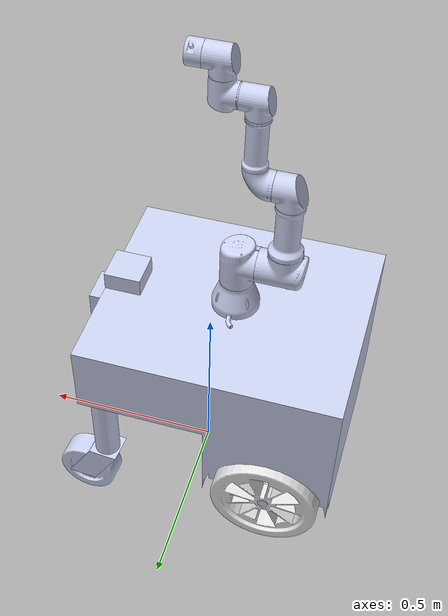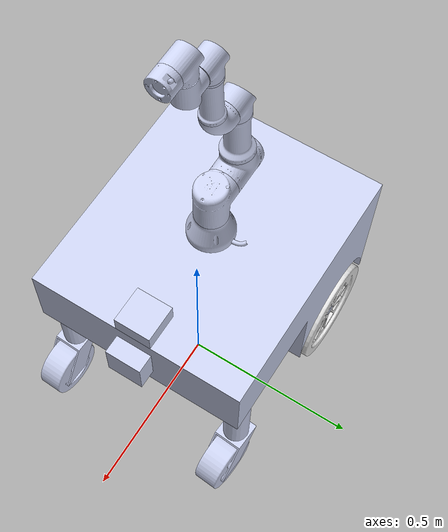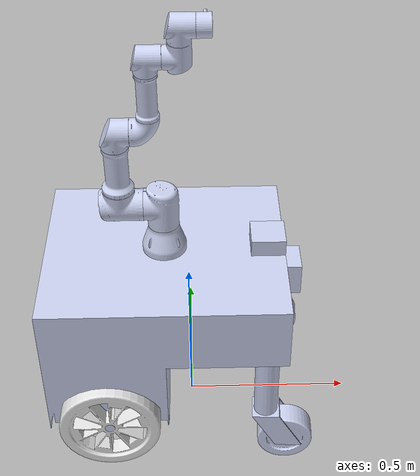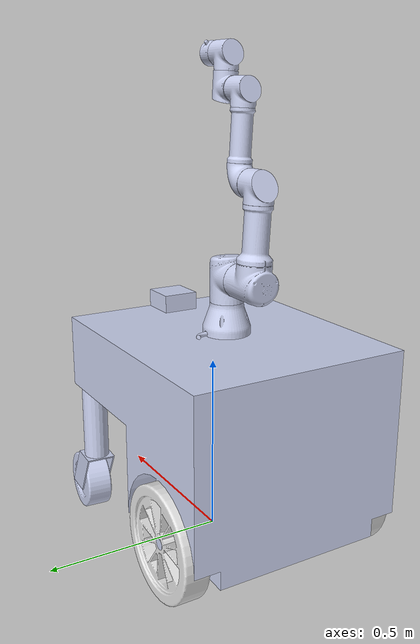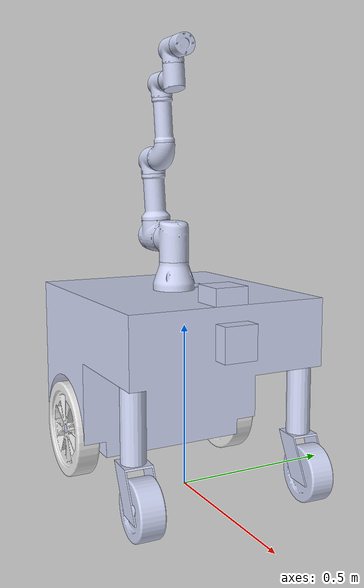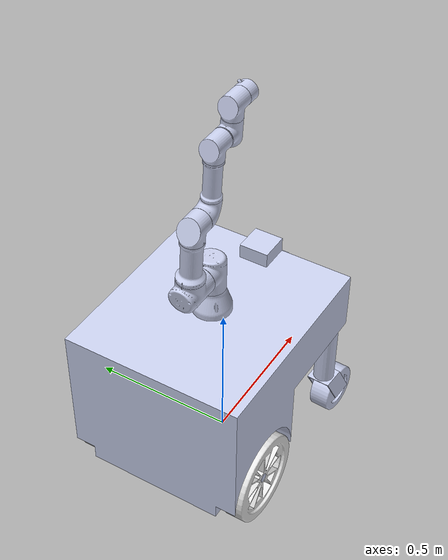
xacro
<?xml version="1.0"?>
<robot
     xmlns:xacro="http://www.ros.org/wiki/xacro" name="mgbot3">
    <xacro:include filename="$(find mgbot3)/urdf/mgbot3_base.xacro" />

    <xacro:include filename="$(find mgbot3)/urdf/sensor.xacro" />

    <xacro:include filename="$(find mgbot3)/urdf/color.xacro" />

    <xacro:include filename="$(find mgbot3)/urdf/transmission.xacro" />

</robot>

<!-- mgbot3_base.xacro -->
<robot
     xmlns:xacro="http://www.ros.org/wiki/xacro" name="mgbot3_base">

  <link name="base_footprint">
            <visual>
                <origin xyz="0 0 0" rpy="0 0 0" />
                <geometry>
                    <box size="0.001 0.001 0.001" />
                </geometry>
            </visual>
   </link>

   <joint name="base_footprint_joint" type="fixed">
            <origin xyz="-0.068339 8.6736E-18 0.6" rpy="0 0 0" />
            <parent link="base_footprint"/>
            <child link="base_link" />
      </joint>
  <link
    name="base_link">
    <inertial>
      <origin
        xyz="-0.068339 8.6736E-18 -0.19433"
        rpy="0 0 0" />
      <mass
        value="137.94" />
      <inertia
        ixx="6.3738"
        ixy="-2.2346E-16"
        ixz="-1.3864"
        iyy="7.6094"
        iyz="1.3046E-16"
        izz="8.7761" />
    </inertial>
    <visual>
      <origin
        xyz="0 0 0"
        rpy="0 0 0" />
      <geometry>
        <mesh
          filename="package://mgbot3/meshes/base_link.STL" />
      </geometry>
      <material
        name="">
        <color
          rgba="0.79216 0.81961 0.93333 1" />
      </material>
    </visual>
    <collision>
      <origin
        xyz="0 0 0"
        rpy="0 0 0" />
      <geometry>
        <mesh
          filename="package://mgbot3/meshes/base_link.STL" />
      </geometry>
    </collision>
  </link>
  <link
    name="left_wheel_link">
    <inertial>
      <origin
        xyz="-4.8493E-06 -0.025 -9.4022E-07"
        rpy="0 0 0" />
      <mass
        value="2.7059" />
      <inertia
        ixx="0.021276"
        ixy="1.6819E-08"
        ixz="1.4738E-07"
        iyy="0.040747"
        iyz="1.2499E-08"
        izz="0.021275" />
    </inertial>
    <visual>
      <origin
        xyz="0 0 0"
        rpy="0 0 0" />
      <geometry>
        <mesh
          filename="package://mgbot3/meshes/left_wheel_link.STL" />
      </geometry>
      <material
        name="">
        <color
          rgba="0.89804 0.89804 0.89804 1" />
      </material>
    </visual>
    <collision>
      <origin
        xyz="0 0 0"
        rpy="0 0 0" />
      <geometry>
        <mesh
          filename="package://mgbot3/meshes/left_wheel_link.STL" />
      </geometry>
    </collision>
  </link>
  <joint
    name="left_wheel_joint"
    type="continuous">
    <origin
      xyz="-0.17499 0.3 -0.45"
      rpy="0 0 0" />
    <parent
      link="base_link" />
    <child
      link="left_wheel_link" />
    <axis
      xyz="1.2505E-05 1 0" />
    <limit
      effort="100"
      velocity="15" />
    <dynamics
      damping="0"
      friction="0" />
  </joint>
  <link
    name="right_wheel_link">
    <inertial>
      <origin
        xyz="2.1448E-06 0.025 -4.4497E-06"
        rpy="0 0 0" />
      <mass
        value="2.7059" />
      <inertia
        ixx="0.021275"
        ixy="3.2647E-11"
        ixz="-8.9311E-10"
        iyy="0.040747"
        iyz="-2.0955E-08"
        izz="0.021276" />
    </inertial>
    <visual>
      <origin
        xyz="0 0 0"
        rpy="0 0 0" />
      <geometry>
        <mesh
          filename="package://mgbot3/meshes/right_wheel_link.STL" />
      </geometry>
      <material
        name="">
        <color
          rgba="0.89804 0.89804 0.89804 1" />
      </material>
    </visual>
    <collision>
      <origin
        xyz="0 0 0"
        rpy="0 0 0" />
      <geometry>
        <mesh
          filename="package://mgbot3/meshes/right_wheel_link.STL" />
      </geometry>
    </collision>
  </link>
  <joint
    name="right_wheel_joint"
    type="continuous">
    <origin
      xyz="-0.175 -0.3 -0.45"
      rpy="0 0 0" />
    <parent
      link="base_link" />
    <child
      link="right_wheel_link" />
    <axis
      xyz="1.2505E-05 1 0" />
    <limit
      effort="100"
      velocity="15" />
    <dynamics
      damping="0"
      friction="0" />
  </joint>
  <link
    name="left_bracket_link">
    <inertial>
      <origin
        xyz="0.0063707 -0.00045456 -0.030819"
        rpy="0 0 0" />
      <mass
        value="0.9319" />
      <inertia
        ixx="0.0071346"
        ixy="1.3642E-05"
        ixz="0.00099191"
        iyy="0.0073249"
        iyz="-7.0774E-05"
        izz="0.00097939" />
    </inertial>
    <visual>
      <origin
        xyz="0 0 0"
        rpy="0 0 0" />
      <geometry>
        <mesh
          filename="package://mgbot3/meshes/left_bracket_link.STL" />
      </geometry>
      <material
        name="">
        <color
          rgba="0.79216 0.81961 0.93333 1" />
      </material>
    </visual>
    <collision>
      <origin
        xyz="0 0 0"
        rpy="0 0 0" />
      <geometry>
        <mesh
          filename="package://mgbot3/meshes/left_bracket_link.STL" />
      </geometry>
    </collision>
  </link>
  <joint
    name="left_bracket_joint"
    type="continuous">
    <origin
      xyz="0.29 0.265 -0.304"
      rpy="0 0 0" />
    <parent
      link="base_link" />
    <child
      link="left_bracket_link" />
    <axis
      xyz="0 0 -1" />
  </joint>
  <link
    name="left_caster_link">
    <inertial>
      <origin
        xyz="-0.0017792 -0.024937 -2.7606E-07"
        rpy="0 0 0" />
      <mass
        value="1.2416" />
      <inertia
        ixx="0.0027261"
        ixy="0.00013395"
        ixz="1.2378E-09"
        iyy="0.0045939"
        iyz="-2.5566E-10"
        izz="0.0027165" />
    </inertial>
    <visual>
      <origin
        xyz="0 0 0"
        rpy="0 0 0" />
      <geometry>
        <mesh
          filename="package://mgbot3/meshes/left_caster_link.STL" />
      </geometry>
      <material
        name="">
        <color
          rgba="0.79216 0.81961 0.93333 1" />
      </material>
    </visual>
    <collision>
      <origin
        xyz="0 0 0"
        rpy="0 0 0" />
      <geometry>
        <mesh
          filename="package://mgbot3/meshes/left_caster_link.STL" />
      </geometry>
    </collision>
  </link>
  <joint
    name="left_caster_joint"
    type="continuous">
    <origin
      xyz="0.061627 0.020666 -0.209"
      rpy="0 0 0" />
    <parent
      link="left_bracket_link" />
    <child
      link="left_caster_link" />
    <axis
      xyz="0 1 0" />
  </joint>
  <link
    name="right_bracket_link">
    <inertial>
      <origin
        xyz="0.0063812 -0.00026976 -0.030819"
        rpy="0 0 0" />
      <mass
        value="0.9319" />
      <inertia
        ixx="0.007134"
        ixy="8.1094E-06"
        ixz="0.00099354"
        iyy="0.0073255"
        iyz="-4.2001E-05"
        izz="0.00097939" />
    </inertial>
    <visual>
      <origin
        xyz="0 0 0"
        rpy="0 0 0" />
      <geometry>
        <mesh
          filename="package://mgbot3/meshes/right_bracket_link.STL" />
      </geometry>
      <material
        name="">
        <color
          rgba="0.79216 0.81961 0.93333 1" />
      </material>
    </visual>
    <collision>
      <origin
        xyz="0 0 0"
        rpy="0 0 0" />
      <geometry>
        <mesh
          filename="package://mgbot3/meshes/right_bracket_link.STL" />
      </geometry>
    </collision>
  </link>
  <joint
    name="right_bracket_joint"
    type="continuous">
    <origin
      xyz="0.29 -0.265 -0.304"
      rpy="0 0 0" />
    <parent
      link="base_link" />
    <child
      link="right_bracket_link" />
    <axis
      xyz="0 0 -1" />
  </joint>
  <link
    name="right_caster_link">
    <inertial>
      <origin
        xyz="0.001056 0.024978 2.7902E-07"
        rpy="0 0 0" />
      <mass
        value="1.2416" />
      <inertia
        ixx="0.0027199"
        ixy="7.9631E-05"
        ixz="9.0728E-11"
        iyy="0.0046001"
        iyz="4.5148E-12"
        izz="0.0027165" />
    </inertial>
    <visual>
      <origin
        xyz="0 0 0"
        rpy="0 0 0" />
      <geometry>
        <mesh
          filename="package://mgbot3/meshes/right_caster_link.STL" />
      </geometry>
      <material
        name="">
        <color
          rgba="0.79216 0.81961 0.93333 1" />
      </material>
    </visual>
    <collision>
      <origin
        xyz="0 0 0"
        rpy="0 0 0" />
      <geometry>
        <mesh
          filename="package://mgbot3/meshes/right_caster_link.STL" />
      </geometry>
    </collision>
  </link>
  <joint
    name="right_caster_joint"
    type="continuous">
    <origin
      xyz="0.0588904759761545 -0.0275118666696804 -0.209000324152001"
      rpy="0 0 0" />
    <parent
      link="right_bracket_link" />
    <child
      link="right_caster_link" />
    <axis
      xyz="0.0422363104361328 0.999107648895124 0" />
  </joint>
  <link
    name="sensor_link">
    <inertial>
      <origin
        xyz="-0.025 2.2482E-14 7.1942E-13"
        rpy="0 0 0" />
      <mass
        value="0.5" />
      <inertia
        ixx="0.00083333"
        ixy="-1.0595E-21"
        ixz="-9.9915E-19"
        iyy="0.00052083"
        iyz="-5.5203E-20"
        izz="0.00052083" />
    </inertial>
    <visual>
      <origin
        xyz="0 0 0"
        rpy="0 0 0" />
      <geometry>
        <mesh
          filename="package://mgbot3/meshes/sensor_link.STL" />
      </geometry>
      <material
        name="">
        <color
          rgba="0.79216 0.81961 0.93333 1" />
      </material>
    </visual>
    <collision>
      <origin
        xyz="0 0 0"
        rpy="0 0 0" />
      <geometry>
        <mesh
          filename="package://mgbot3/meshes/sensor_link.STL" />
      </geometry>
    </collision>
  </link>
  <joint
    name="sensor_joint"
    type="fixed">
    <origin
      xyz="0.4 0 -0.095"
      rpy="0 0 0" />
    <parent
      link="base_link" />
    <child
      link="sensor_link" />
    <axis
      xyz="0 0 0" />
  </joint>
  <link
    name="sensor2_link">
    <inertial>
      <origin
        xyz="-0.05 1.7347E-18 0"
        rpy="0 0 0" />
      <mass
        value="0.5" />
      <inertia
        ixx="0.00052083"
        ixy="6.6128E-20"
        ixz="1.0196E-21"
        iyy="0.00052083"
        iyz="2.7015E-20"
        izz="0.00083333" />
    </inertial>
    <visual>
      <origin
        xyz="0 0 0"
        rpy="0 0 0" />
      <geometry>
        <mesh
          filename="package://mgbot3/meshes/sensor2_link.STL" />
      </geometry>
      <material
        name="">
        <color
          rgba="0.79216 0.81961 0.93333 1" />
      </material>
    </visual>
    <collision>
      <origin
        xyz="0 0 0"
        rpy="0 0 0" />
      <geometry>
        <mesh
          filename="package://mgbot3/meshes/sensor2_link.STL" />
      </geometry>
    </collision>
  </link>
  <joint
    name="sensor2_joint"
    type="fixed">
    <origin
      xyz="0.35 0 0.025"
      rpy="0 0 0" />
    <parent
      link="base_link" />
    <child
      link="sensor2_link" />
    <axis
      xyz="0 0 0" />
  </joint>
  <link
    name="arm1_link">
    <inertial>
      <origin
        xyz="-3.7863E-05 0.00081003 0.00023636"
        rpy="0 0 0" />
      <mass
        value="0.61578" />
      <inertia
        ixx="0.00076129"
        ixy="2.9379E-07"
        ixz="-3.5384E-07"
        iyy="0.00077457"
        iyz="3.4657E-06"
        izz="0.0010029" />
    </inertial>
    <visual>
      <origin
        xyz="0 0 0"
        rpy="0 0 0" />
      <geometry>
        <mesh
          filename="package://mgbot3/meshes/arm1_link.STL" />
      </geometry>
      <material
        name="">
        <color
          rgba="0.79608 0.82353 0.93725 1" />
      </material>
    </visual>
    <collision>
      <origin
        xyz="0 0 0"
        rpy="0 0 0" />
      <geometry>
        <mesh
          filename="package://mgbot3/meshes/arm1_link.STL" />
      </geometry>
    </collision>
  </link>
  <joint
    name="arm1_joint"
    type="continuous">
    <origin
      xyz="0 0 0.045984"
      rpy="0 0 0" />
    <parent
      link="base_link" />
    <child
      link="arm1_link" />
    <axis
      xyz="0 0 -1" />
  </joint>
  <link
    name="arm2_link">
    <inertial>
      <origin
        xyz="-0.02125 2.7466E-06 0.0080529"
        rpy="0 0 0" />
      <mass
        value="0.77914" />
      <inertia
        ixx="0.0011753"
        ixy="1.5458E-07"
        ixz="0.00011268"
        iyy="0.0012816"
        iyz="-7.4453E-08"
        izz="0.00095604" />
    </inertial>
    <visual>
      <origin
        xyz="0 0 0"
        rpy="0 0 0" />
      <geometry>
        <mesh
          filename="package://mgbot3/meshes/arm2_link.STL" />
      </geometry>
      <material
        name="">
        <color
          rgba="0.79608 0.82353 0.93725 1" />
      </material>
    </visual>
    <collision>
      <origin
        xyz="0 0 0"
        rpy="0 0 0" />
      <geometry>
        <mesh
          filename="package://mgbot3/meshes/arm2_link.STL" />
      </geometry>
    </collision>
  </link>
  <joint
    name="arm2_joint"
    type="continuous">
    <origin
      xyz="0.013357 0 0.087517"
      rpy="0 0 0" />
    <parent
      link="arm1_link" />
    <child
      link="arm2_link" />
    <axis
      xyz="0 0 1" />
  </joint>
  <link
    name="arm3_link">
    <inertial>
      <origin
        xyz="-0.0080529 -0.0012034 0.021216"
        rpy="0 0 0" />
      <mass
        value="0.77914" />
      <inertia
        ixx="0.00095603"
        ixy="-6.4374E-06"
        ixz="0.0001125"
        iyy="0.0012813"
        iyz="6.1522E-06"
        izz="0.0011757" />
    </inertial>
    <visual>
      <origin
        xyz="0 0 0"
        rpy="0 0 0" />
      <geometry>
        <mesh
          filename="package://mgbot3/meshes/arm3_link.STL" />
      </geometry>
      <material
        name="">
        <color
          rgba="0.79608 0.82353 0.93725 1" />
      </material>
    </visual>
    <collision>
      <origin
        xyz="0 0 0"
        rpy="0 0 0" />
      <geometry>
        <mesh
          filename="package://mgbot3/meshes/arm3_link.STL" />
      </geometry>
    </collision>
  </link>
  <joint
    name="arm3_joint"
    type="continuous">
    <origin
      xyz="-0.11481 0.00075266 0.0067061"
      rpy="0 0 0" />
    <parent
      link="arm2_link" />
    <child
      link="arm3_link" />
    <axis
      xyz="-1 0 0" />
  </joint>
  <link
    name="arm4_link">
    <inertial>
      <origin
        xyz="1.1676E-05 0.00053067 -0.0093774"
        rpy="0 0 0" />
      <mass
        value="0.55259" />
      <inertia
        ixx="0.0012189"
        ixy="-8.332E-09"
        ixz="1.4784E-07"
        iyy="0.0012158"
        iyz="4.9274E-05"
        izz="0.00034789" />
    </inertial>
    <visual>
      <origin
        xyz="0 0 0"
        rpy="0 0 0" />
      <geometry>
        <mesh
          filename="package://mgbot3/meshes/arm4_link.STL" />
      </geometry>
      <material
        name="">
        <color
          rgba="0.79608 0.82353 0.93725 1" />
      </material>
    </visual>
    <collision>
      <origin
        xyz="0 0 0"
        rpy="0 0 0" />
      <geometry>
        <mesh
          filename="package://mgbot3/meshes/arm4_link.STL" />
      </geometry>
    </collision>
  </link>
  <joint
    name="arm4_joint"
    type="continuous">
    <origin
      xyz="-0.02004 -0.0082617 0.14601"
      rpy="0 0 0" />
    <parent
      link="arm3_link" />
    <child
      link="arm4_link" />
    <axis
      xyz="0 0 -1" />
  </joint>
  <link
    name="arm5_link">
    <inertial>
      <origin
        xyz="-0.0081691 0.0017175 -0.03016"
        rpy="0 0 0" />
      <mass
        value="0.35676" />
      <inertia
        ixx="0.00030936"
        ixy="2.2854E-06"
        ixz="-3.9977E-05"
        iyy="0.00031098"
        iyz="2.3006E-06"
        izz="0.00027238" />
    </inertial>
    <visual>
      <origin
        xyz="0 0 0"
        rpy="0 0 0" />
      <geometry>
        <mesh
          filename="package://mgbot3/meshes/arm5_link.STL" />
      </geometry>
      <material
        name="">
        <color
          rgba="0.79608 0.82353 0.93725 1" />
      </material>
    </visual>
    <collision>
      <origin
        xyz="0 0 0"
        rpy="0 0 0" />
      <geometry>
        <mesh
          filename="package://mgbot3/meshes/arm5_link.STL" />
      </geometry>
    </collision>
  </link>
  <joint
    name="arm5_joint"
    type="continuous">
    <origin
      xyz="0.015537 -0.0076137 0.13455"
      rpy="0 0 0" />
    <parent
      link="arm4_link" />
    <child
      link="arm5_link" />
    <axis
      xyz="0 0 -1" />
  </joint>
  <link
    name="arm6_link">
    <inertial>
      <origin
        xyz="-0.0078132 -0.00032329 0.0056769"
        rpy="0 0 0" />
      <mass
        value="0.31598" />
      <inertia
        ixx="0.00025569"
        ixy="3.6412E-06"
        ixz="-6.4373E-05"
        iyy="0.0002862"
        iyz="3.6305E-06"
        izz="0.00022223" />
    </inertial>
    <visual>
      <origin
        xyz="0 0 0"
        rpy="0 0 0" />
      <geometry>
        <mesh
          filename="package://mgbot3/meshes/arm6_link.STL" />
      </geometry>
      <material
        name="">
        <color
          rgba="0.79608 0.82353 0.93725 1" />
      </material>
    </visual>
    <collision>
      <origin
        xyz="0 0 0"
        rpy="0 0 0" />
      <geometry>
        <mesh
          filename="package://mgbot3/meshes/arm6_link.STL" />
      </geometry>
    </collision>
  </link>
  <joint
    name="arm6_joint"
    type="continuous">
    <origin
      xyz="0.069287 0.00080628 -0.014231"
      rpy="0 0 0" />
    <parent
      link="arm5_link" />
    <child
      link="arm6_link" />
    <axis
      xyz="1 0 0" />
  </joint>
  <link
    name="arm7_link">
    <inertial>
      <origin
        xyz="-5.2746E-11 2.7029E-05 -0.00047757"
        rpy="0 0 0" />
      <mass
        value="0.32104" />
      <inertia
        ixx="0.00056005"
        ixy="-2.4364E-09"
        ixz="-1.3863E-10"
        iyy="0.00055867"
        iyz="2.4482E-05"
        izz="0.00012745" />
    </inertial>
    <visual>
      <origin
        xyz="0 0 0"
        rpy="0 0 0" />
      <geometry>
        <mesh
          filename="package://mgbot3/meshes/arm7_link.STL" />
      </geometry>
      <material
        name="">
        <color
          rgba="0.79608 0.82353 0.93725 1" />
      </material>
    </visual>
    <collision>
      <origin
        xyz="0 0 0"
        rpy="0 0 0" />
      <geometry>
        <mesh
          filename="package://mgbot3/meshes/arm7_link.STL" />
      </geometry>
    </collision>
  </link>
  <joint
    name="arm7_joint"
    type="continuous">
    <origin
      xyz="0.0083871 -0.0059399 0.10494"
      rpy="0 0 0" />
    <parent
      link="arm6_link" />
    <child
      link="arm7_link" />
    <axis
      xyz="0 0 1" />
  </joint>
  <link
    name="arm8_link">
    <inertial>
      <origin
        xyz="-0.0063847 0.00092875 -0.016517"
        rpy="0 0 0" />
      <mass
        value="0.27617" />
      <inertia
        ixx="0.00017688"
        ixy="9.3235E-07"
        ixz="-1.6482E-05"
        iyy="0.00021368"
        iyz="1.8126E-06"
        izz="0.00018174" />
    </inertial>
    <visual>
      <origin
        xyz="0 0 0"
        rpy="0 0 0" />
      <geometry>
        <mesh
          filename="package://mgbot3/meshes/arm8_link.STL" />
      </geometry>
      <material
        name="">
        <color
          rgba="0.79608 0.82353 0.93725 1" />
      </material>
    </visual>
    <collision>
      <origin
        xyz="0 0 0"
        rpy="0 0 0" />
      <geometry>
        <mesh
          filename="package://mgbot3/meshes/arm8_link.STL" />
      </geometry>
    </collision>
  </link>
  <joint
    name="arm8_joint"
    type="continuous">
    <origin
      xyz="0.011917 -0.0067575 0.1194"
      rpy="0 0 0" />
    <parent
      link="arm7_link" />
    <child
      link="arm8_link" />
    <axis
      xyz="0 0 1" />
  </joint>
  <link
    name="arm9_link">
    <inertial>
      <origin
        xyz="-0.016543 0.00036659 -0.0063741"
        rpy="0 0 0" />
      <mass
        value="0.27617" />
      <inertia
        ixx="0.00018164"
        ixy="9.333E-07"
        ixz="-1.6481E-05"
        iyy="0.00021365"
        iyz="2.0818E-06"
        izz="0.00017699" />
    </inertial>
    <visual>
      <origin
        xyz="0 0 0"
        rpy="0 0 0" />
      <geometry>
        <mesh
          filename="package://mgbot3/meshes/arm9_link.STL" />
      </geometry>
      <material
        name="">
        <color
          rgba="0.79608 0.82353 0.93725 1" />
      </material>
    </visual>
    <collision>
      <origin
        xyz="0 0 0"
        rpy="0 0 0" />
      <geometry>
        <mesh
          filename="package://mgbot3/meshes/arm9_link.STL" />
      </geometry>
    </collision>
  </link>
  <joint
    name="arm9_joint"
    type="continuous">
    <origin
      xyz="0.084269 -0.00015841 0.0028264"
      rpy="0 0 0" />
    <parent
      link="arm8_link" />
    <child
      link="arm9_link" />
    <axis
      xyz="-1 0 0" />
  </joint>
  <link
    name="arm10_link">
    <inertial>
      <origin
        xyz="-0.00638472426455181 0.000928751626483423 -0.0165169831423235"
        rpy="0 0 0" />
      <mass
        value="0.27617157915883" />
      <inertia
        ixx="0.000176878560442398"
        ixy="9.32366898445191E-07"
        ixz="-1.6481565018826E-05"
        iyy="0.000213677596893029"
        iyz="1.81263896664169E-06"
        izz="0.000181738349035618" />
    </inertial>
    <visual>
      <origin
        xyz="0 0 0"
        rpy="0 0 0" />
      <geometry>
        <mesh
          filename="package://mgbot3/meshes/arm10_link.STL" />
      </geometry>
      <material
        name="">
        <color
          rgba="0.796078431372549 0.823529411764706 0.937254901960784 1" />
      </material>
    </visual>
    <collision>
      <origin
        xyz="0 0 0"
        rpy="0 0 0" />
      <geometry>
        <mesh
          filename="package://mgbot3/meshes/arm10_link.STL" />
      </geometry>
    </collision>
  </link>
  <joint
    name="arm10_joint"
    type="continuous">
    <origin
      xyz="0.0028308 -0.0047628 0.084134"
      rpy="0 0 0" />
    <parent
      link="arm9_link" />
    <child
      link="arm10_link" />
    <axis
      xyz="0 0 -1" />
  </joint>
  <link
    name="arm11_link">
    <inertial>
      <origin
        xyz="-0.020427 0.00024649 0.00030992"
        rpy="0 0 0" />
      <mass
        value="0.11536" />
      <inertia
        ixx="5.9067E-05"
        ixy="6.4256E-08"
        ixz="8.0788E-08"
        iyy="4.2551E-05"
        iyz="1.036E-07"
        izz="4.2599E-05" />
    </inertial>
    <visual>
      <origin
        xyz="0 0 0"
        rpy="0 0 0" />
      <geometry>
        <mesh
          filename="package://mgbot3/meshes/arm11_link.STL" />
      </geometry>
      <material
        name="">
        <color
          rgba="0.79608 0.82353 0.93725 1" />
      </material>
    </visual>
    <collision>
      <origin
        xyz="0 0 0"
        rpy="0 0 0" />
      <geometry>
        <mesh
          filename="package://mgbot3/meshes/arm11_link.STL" />
      </geometry>
    </collision>
  </link>
  <joint
    name="arm11_joint"
    type="continuous">
    <origin
      xyz="0.069683 0.00020337 -0.0094628"
      rpy="0 0 0" />
    <parent
      link="arm10_link" />
    <child
      link="arm11_link" />
    <axis
      xyz="-1 0 0" />
  </joint>
<!-- //   GRASPING FRAME   // -->
  <link name="grasping_frame"/>
  <joint name="grasping_frame_joint" type="fixed">
		<parent link="arm11_link"/>
		<child link="grasping_frame"/>
		<origin rpy="0 0 0" xyz="0 0 0"/>
  </joint>
</robot>

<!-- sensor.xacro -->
<robot
     xmlns:xacro="http://www.ros.org/wiki/xacro" name="sensor">

 <!--add IMU plug-in-->

  <gazebo reference="base_link">
    <gravity>true</gravity>
    <sensor name="imu_sensor" type="imu">
      <always_on>true</always_on>
      <update_rate>100</update_rate>
      <visualize>true</visualize>
      <topic>__default_topic__</topic>
      <plugin filename="libgazebo_ros_imu_sensor.so" name="imu_plugin">
        <topicName>imu</topicName>
        <bodyName>base_link</bodyName>
        <updateRateHZ>100.0</updateRateHZ>
        <gaussianNoise>0.0</gaussianNoise>
        <xyzOffset>0 0 0</xyzOffset>
        <rpyOffset>0 0 0</rpyOffset>
        <frameName>base_link</frameName>
      </plugin>
      <pose>0 0 0 0 0 0</pose>
    </sensor>
  </gazebo>

 <!--add lidar plug-in-->

  <gazebo reference="sensor2_link">
    <sensor type="ray" name="head_hokuyo_sensor">
      <pose>0 0 0 0 0 0</pose>
      <visualize>false</visualize>
      <update_rate>120</update_rate>
      <ray>
        <scan>
          <horizontal>
            <samples>720</samples>
            <resolution>1</resolution>
            <min_angle>-1.570796</min_angle>
            <max_angle>1.570796</max_angle>
          </horizontal>
        </scan>
        <range>
          <min>0.10</min>
          <max>100.0</max>
          <resolution>0.01</resolution>
        </range>
        <noise>
          <type>gaussian</type>
          <mean>0.0</mean>
          <stddev>0.01</stddev>
        </noise>
      </ray>
      <plugin name="gazebo_ros_head_hokuyo_controller" filename="libgazebo_ros_laser.so">
        <topicName>/laser/scan</topicName>
        <frameName>sensor_link</frameName>
      </plugin>
    </sensor>
  </gazebo>

<!--add RGB-D camera plug-in-->
  <link name="camera_link_fake"></link>
  <joint name="camera_joint_fake" type="fixed">
    <origin xyz="0 0 0" rpy="-1.5708 0 -1.5708 "/>
    <parent link="sensor_link"/>
    <child link="camera_link_fake"/>
  </joint>

  <gazebo reference="sensor_link">
    <sensor type="depth" name="camera">
        <always_on>1</always_on>
        <visualize>true</visualize>
        <camera>
            <horizontal_fov>1.047</horizontal_fov>
            <image>
                <width>640</width>
                <height>480</height>
                <format>R8G8B8</format>
            </image>
            <depth_camera>

            </depth_camera>
            <clip>
                <near>0.1</near>
                <far>100</far>
            </clip>
        </camera>
             <plugin name="camera_controller" filename="libgazebo_ros_openni_kinect.so">
             <alwaysOn>true</alwaysOn>
                <updateRate>10.0</updateRate>
                <cameraName>camera</cameraName>
                <frameName>camera_link_fake</frameName>
            <imageTopicName>rgb/image_raw</imageTopicName>
            <depthImageTopicName>depth/image_raw</depthImageTopicName>
            <pointCloudTopicName>depth/points</pointCloudTopicName>
            <cameraInfoTopicName>rgb/camera_info</cameraInfoTopicName>
            <depthImageCameraInfoTopicName>depth/camera_info</depthImageCameraInfoTopicName>
            <pointCloudCutoff>0.4</pointCloudCutoff>
                <hackBaseline>0.07</hackBaseline>
                <distortionK1>0.0</distortionK1>
                <distortionK2>0.0</distortionK2>
                <distortionK3>0.0</distortionK3>
                <distortionT1>0.0</distortionT1>
                <distortionT2>0.0</distortionT2>
            <CxPrime>0.0</CxPrime>
            <Cx>0.0</Cx>
            <Cy>0.0</Cy>
            <focalLength>0.0</focalLength>
            </plugin>
    </sensor>
  </gazebo>

</robot>
